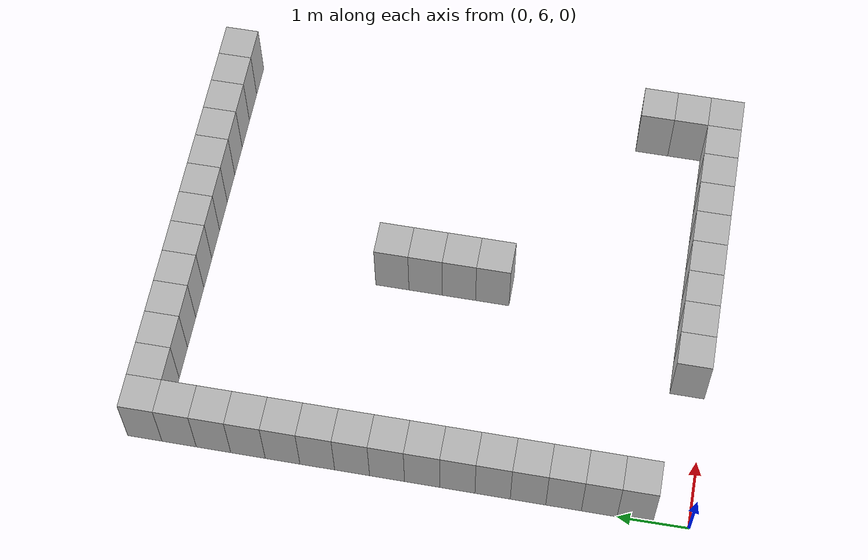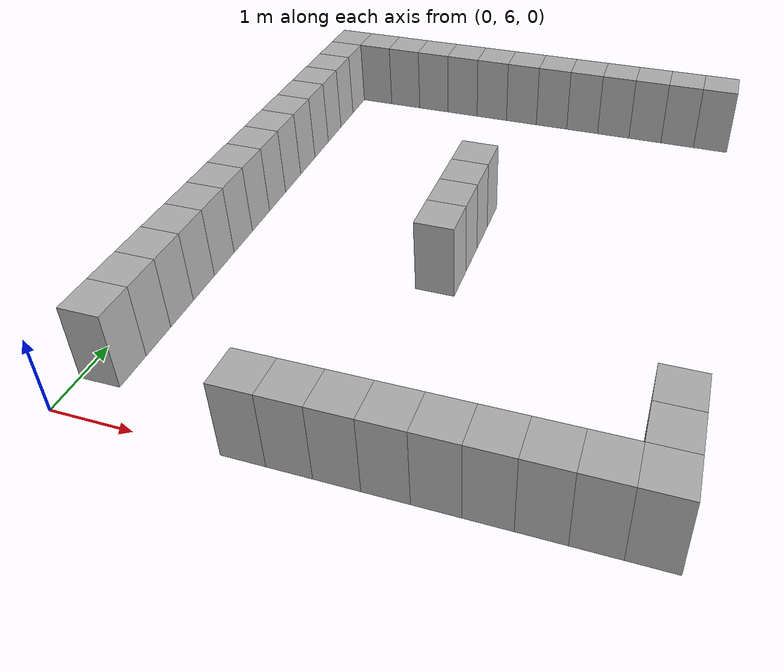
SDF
<sdf version="1.4">
 <world name="default">
  <model name="box_0_13">
   <pose>0.25 6.75 0.5 0 0 0</pose>
   <static>true</static>
   <link name="link">
    <collision name="collision"><geometry><box><size>0.5 0.5 1.0</size></box></geometry></collision>
    <visual name="visual"><geometry><box><size>0.5 0.5 1.0</size></box></geometry></visual>
   </link>
  </model>
  <model name="box_0_14">
   <pose>0.25 7.25 0.5 0 0 0</pose>
   <static>true</static>
   <link name="link">
    <collision name="collision"><geometry><box><size>0.5 0.5 1.0</size></box></geometry></collision>
    <visual name="visual"><geometry><box><size>0.5 0.5 1.0</size></box></geometry></visual>
   </link>
  </model>
  <model name="box_0_15">
   <pose>0.25 7.75 0.5 0 0 0</pose>
   <static>true</static>
   <link name="link">
    <collision name="collision"><geometry><box><size>0.5 0.5 1.0</size></box></geometry></collision>
    <visual name="visual"><geometry><box><size>0.5 0.5 1.0</size></box></geometry></visual>
   </link>
  </model>
  <model name="box_0_16">
   <pose>0.25 8.25 0.5 0 0 0</pose>
   <static>true</static>
   <link name="link">
    <collision name="collision"><geometry><box><size>0.5 0.5 1.0</size></box></geometry></collision>
    <visual name="visual"><geometry><box><size>0.5 0.5 1.0</size></box></geometry></visual>
   </link>
  </model>
  <model name="box_0_17">
   <pose>0.25 8.75 0.5 0 0 0</pose>
   <static>true</static>
   <link name="link">
    <collision name="collision"><geometry><box><size>0.5 0.5 1.0</size></box></geometry></collision>
    <visual name="visual"><geometry><box><size>0.5 0.5 1.0</size></box></geometry></visual>
   </link>
  </model>
  <model name="box_0_18">
   <pose>0.25 9.25 0.5 0 0 0</pose>
   <static>true</static>
   <link name="link">
    <collision name="collision"><geometry><box><size>0.5 0.5 1.0</size></box></geometry></collision>
    <visual name="visual"><geometry><box><size>0.5 0.5 1.0</size></box></geometry></visual>
   </link>
  </model>
  <model name="box_0_19">
   <pose>0.25 9.75 0.5 0 0 0</pose>
   <static>true</static>
   <link name="link">
    <collision name="collision"><geometry><box><size>0.5 0.5 1.0</size></box></geometry></collision>
    <visual name="visual"><geometry><box><size>0.5 0.5 1.0</size></box></geometry></visual>
   </link>
  </model>
  <model name="box_0_20">
   <pose>0.25 10.25 0.5 0 0 0</pose>
   <static>true</static>
   <link name="link">
    <collision name="collision"><geometry><box><size>0.5 0.5 1.0</size></box></geometry></collision>
    <visual name="visual"><geometry><box><size>0.5 0.5 1.0</size></box></geometry></visual>
   </link>
  </model>
  <model name="box_0_21">
   <pose>0.25 10.75 0.5 0 0 0</pose>
   <static>true</static>
   <link name="link">
    <collision name="collision"><geometry><box><size>0.5 0.5 1.0</size></box></geometry></collision>
    <visual name="visual"><geometry><box><size>0.5 0.5 1.0</size></box></geometry></visual>
   </link>
  </model>
  <model name="box_0_22">
   <pose>0.25 11.25 0.5 0 0 0</pose>
   <static>true</static>
   <link name="link">
    <collision name="collision"><geometry><box><size>0.5 0.5 1.0</size></box></geometry></collision>
    <visual name="visual"><geometry><box><size>0.5 0.5 1.0</size></box></geometry></visual>
   </link>
  </model>
  <model name="box_0_23">
   <pose>0.25 11.75 0.5 0 0 0</pose>
   <static>true</static>
   <link name="link">
    <collision name="collision"><geometry><box><size>0.5 0.5 1.0</size></box></geometry></collision>
    <visual name="visual"><geometry><box><size>0.5 0.5 1.0</size></box></geometry></visual>
   </link>
  </model>
  <model name="box_0_24">
   <pose>0.25 12.25 0.5 0 0 0</pose>
   <static>true</static>
   <link name="link">
    <collision name="collision"><geometry><box><size>0.5 0.5 1.0</size></box></geometry></collision>
    <visual name="visual"><geometry><box><size>0.5 0.5 1.0</size></box></geometry></visual>
   </link>
  </model>
  <model name="box_0_25">
   <pose>0.25 12.75 0.5 0 0 0</pose>
   <static>true</static>
   <link name="link">
    <collision name="collision"><geometry><box><size>0.5 0.5 1.0</size></box></geometry></collision>
    <visual name="visual"><geometry><box><size>0.5 0.5 1.0</size></box></geometry></visual>
   </link>
  </model>
  <model name="box_0_26">
   <pose>0.25 13.25 0.5 0 0 0</pose>
   <static>true</static>
   <link name="link">
    <collision name="collision"><geometry><box><size>0.5 0.5 1.0</size></box></geometry></collision>
    <visual name="visual"><geometry><box><size>0.5 0.5 1.0</size></box></geometry></visual>
   </link>
  </model>
  <model name="box_0_27">
   <pose>0.25 13.75 0.5 0 0 0</pose>
   <static>true</static>
   <link name="link">
    <collision name="collision"><geometry><box><size>0.5 0.5 1.0</size></box></geometry></collision>
    <visual name="visual"><geometry><box><size>0.5 0.5 1.0</size></box></geometry></visual>
   </link>
  </model>
  <model name="box_1_27">
   <pose>0.75 13.75 0.5 0 0 0</pose>
   <static>true</static>
   <link name="link">
    <collision name="collision"><geometry><box><size>0.5 0.5 1.0</size></box></geometry></collision>
    <visual name="visual"><geometry><box><size>0.5 0.5 1.0</size></box></geometry></visual>
   </link>
  </model>
  <model name="box_2_27">
   <pose>1.25 13.75 0.5 0 0 0</pose>
   <static>true</static>
   <link name="link">
    <collision name="collision"><geometry><box><size>0.5 0.5 1.0</size></box></geometry></collision>
    <visual name="visual"><geometry><box><size>0.5 0.5 1.0</size></box></geometry></visual>
   </link>
  </model>
  <model name="box_3_27">
   <pose>1.75 13.75 0.5 0 0 0</pose>
   <static>true</static>
   <link name="link">
    <collision name="collision"><geometry><box><size>0.5 0.5 1.0</size></box></geometry></collision>
    <visual name="visual"><geometry><box><size>0.5 0.5 1.0</size></box></geometry></visual>
   </link>
  </model>
  <model name="box_4_12">
   <pose>2.25 6.25 0.5 0 0 0</pose>
   <static>true</static>
   <link name="link">
    <collision name="collision"><geometry><box><size>0.5 0.5 1.0</size></box></geometry></collision>
    <visual name="visual"><geometry><box><size>0.5 0.5 1.0</size></box></geometry></visual>
   </link>
  </model>
  <model name="box_4_27">
   <pose>2.25 13.75 0.5 0 0 0</pose>
   <static>true</static>
   <link name="link">
    <collision name="collision"><geometry><box><size>0.5 0.5 1.0</size></box></geometry></collision>
    <visual name="visual"><geometry><box><size>0.5 0.5 1.0</size></box></geometry></visual>
   </link>
  </model>
  <model name="box_5_12">
   <pose>2.75 6.25 0.5 0 0 0</pose>
   <static>true</static>
   <link name="link">
    <collision name="collision"><geometry><box><size>0.5 0.5 1.0</size></box></geometry></collision>
    <visual name="visual"><geometry><box><size>0.5 0.5 1.0</size></box></geometry></visual>
   </link>
  </model>
  <model name="box_5_27">
   <pose>2.75 13.75 0.5 0 0 0</pose>
   <static>true</static>
   <link name="link">
    <collision name="collision"><geometry><box><size>0.5 0.5 1.0</size></box></geometry></collision>
    <visual name="visual"><geometry><box><size>0.5 0.5 1.0</size></box></geometry></visual>
   </link>
  </model>
  <model name="box_6_12">
   <pose>3.25 6.25 0.5 0 0 0</pose>
   <static>true</static>
   <link name="link">
    <collision name="collision"><geometry><box><size>0.5 0.5 1.0</size></box></geometry></collision>
    <visual name="visual"><geometry><box><size>0.5 0.5 1.0</size></box></geometry></visual>
   </link>
  </model>
  <model name="box_6_18">
   <pose>3.25 9.25 0.5 0 0 0</pose>
   <static>true</static>
   <link name="link">
    <collision name="collision"><geometry><box><size>0.5 0.5 1.0</size></box></geometry></collision>
    <visual name="visual"><geometry><box><size>0.5 0.5 1.0</size></box></geometry></visual>
   </link>
  </model>
  <model name="box_6_19">
   <pose>3.25 9.75 0.5 0 0 0</pose>
   <static>true</static>
   <link name="link">
    <collision name="collision"><geometry><box><size>0.5 0.5 1.0</size></box></geometry></collision>
    <visual name="visual"><geometry><box><size>0.5 0.5 1.0</size></box></geometry></visual>
   </link>
  </model>
  <model name="box_6_20">
   <pose>3.25 10.25 0.5 0 0 0</pose>
   <static>true</static>
   <link name="link">
    <collision name="collision"><geometry><box><size>0.5 0.5 1.0</size></box></geometry></collision>
    <visual name="visual"><geometry><box><size>0.5 0.5 1.0</size></box></geometry></visual>
   </link>
  </model>
  <model name="box_6_21">
   <pose>3.25 10.75 0.5 0 0 0</pose>
   <static>true</static>
   <link name="link">
    <collision name="collision"><geometry><box><size>0.5 0.5 1.0</size></box></geometry></collision>
    <visual name="visual"><geometry><box><size>0.5 0.5 1.0</size></box></geometry></visual>
   </link>
  </model>
  <model name="box_6_27">
   <pose>3.25 13.75 0.5 0 0 0</pose>
   <static>true</static>
   <link name="link">
    <collision name="collision"><geometry><box><size>0.5 0.5 1.0</size></box></geometry></collision>
    <visual name="visual"><geometry><box><size>0.5 0.5 1.0</size></box></geometry></visual>
   </link>
  </model>
  <model name="box_7_12">
   <pose>3.75 6.25 0.5 0 0 0</pose>
   <static>true</static>
   <link name="link">
    <collision name="collision"><geometry><box><size>0.5 0.5 1.0</size></box></geometry></collision>
    <visual name="visual"><geometry><box><size>0.5 0.5 1.0</size></box></geometry></visual>
   </link>
  </model>
  <model name="box_7_27">
   <pose>3.75 13.75 0.5 0 0 0</pose>
   <static>true</static>
   <link name="link">
    <collision name="collision"><geometry><box><size>0.5 0.5 1.0</size></box></geometry></collision>
    <visual name="visual"><geometry><box><size>0.5 0.5 1.0</size></box></geometry></visual>
   </link>
  </model>
  <model name="box_8_12">
   <pose>4.25 6.25 0.5 0 0 0</pose>
   <static>true</static>
   <link name="link">
    <collision name="collision"><geometry><box><size>0.5 0.5 1.0</size></box></geometry></collision>
    <visual name="visual"><geometry><box><size>0.5 0.5 1.0</size></box></geometry></visual>
   </link>
  </model>
  <model name="box_8_27">
   <pose>4.25 13.75 0.5 0 0 0</pose>
   <static>true</static>
   <link name="link">
    <collision name="collision"><geometry><box><size>0.5 0.5 1.0</size></box></geometry></collision>
    <visual name="visual"><geometry><box><size>0.5 0.5 1.0</size></box></geometry></visual>
   </link>
  </model>
  <model name="box_9_12">
   <pose>4.75 6.25 0.5 0 0 0</pose>
   <static>true</static>
   <link name="link">
    <collision name="collision"><geometry><box><size>0.5 0.5 1.0</size></box></geometry></collision>
    <visual name="visual"><geometry><box><size>0.5 0.5 1.0</size></box></geometry></visual>
   </link>
  </model>
  <model name="box_9_27">
   <pose>4.75 13.75 0.5 0 0 0</pose>
   <static>true</static>
   <link name="link">
    <collision name="collision"><geometry><box><size>0.5 0.5 1.0</size></box></geometry></collision>
    <visual name="visual"><geometry><box><size>0.5 0.5 1.0</size></box></geometry></visual>
   </link>
  </model>
  <model name="box_10_12">
   <pose>5.25 6.25 0.5 0 0 0</pose>
   <static>true</static>
   <link name="link">
    <collision name="collision"><geometry><box><size>0.5 0.5 1.0</size></box></geometry></collision>
    <visual name="visual"><geometry><box><size>0.5 0.5 1.0</size></box></geometry></visual>
   </link>
  </model>
  <model name="box_10_27">
   <pose>5.25 13.75 0.5 0 0 0</pose>
   <static>true</static>
   <link name="link">
    <collision name="collision"><geometry><box><size>0.5 0.5 1.0</size></box></geometry></collision>
    <visual name="visual"><geometry><box><size>0.5 0.5 1.0</size></box></geometry></visual>
   </link>
  </model>
  <model name="box_11_12">
   <pose>5.75 6.25 0.5 0 0 0</pose>
   <static>true</static>
   <link name="link">
    <collision name="collision"><geometry><box><size>0.5 0.5 1.0</size></box></geometry></collision>
    <visual name="visual"><geometry><box><size>0.5 0.5 1.0</size></box></geometry></visual>
   </link>
  </model>
  <model name="box_11_27">
   <pose>5.75 13.75 0.5 0 0 0</pose>
   <static>true</static>
   <link name="link">
    <collision name="collision"><geometry><box><size>0.5 0.5 1.0</size></box></geometry></collision>
    <visual name="visual"><geometry><box><size>0.5 0.5 1.0</size></box></geometry></visual>
   </link>
  </model>
  <model name="box_12_12">
   <pose>6.25 6.25 0.5 0 0 0</pose>
   <static>true</static>
   <link name="link">
    <collision name="collision"><geometry><box><size>0.5 0.5 1.0</size></box></geometry></collision>
    <visual name="visual"><geometry><box><size>0.5 0.5 1.0</size></box></geometry></visual>
   </link>
  </model>
  <model name="box_12_13">
   <pose>6.25 6.75 0.5 0 0 0</pose>
   <static>true</static>
   <link name="link">
    <collision name="collision"><geometry><box><size>0.5 0.5 1.0</size></box></geometry></collision>
    <visual name="visual"><geometry><box><size>0.5 0.5 1.0</size></box></geometry></visual>
   </link>
  </model>
  <model name="box_12_14">
   <pose>6.25 7.25 0.5 0 0 0</pose>
   <static>true</static>
   <link name="link">
    <collision name="collision"><geometry><box><size>0.5 0.5 1.0</size></box></geometry></collision>
    <visual name="visual"><geometry><box><size>0.5 0.5 1.0</size></box></geometry></visual>
   </link>
  </model>
  <model name="box_12_27">
   <pose>6.25 13.75 0.5 0 0 0</pose>
   <static>true</static>
   <link name="link">
    <collision name="collision"><geometry><box><size>0.5 0.5 1.0</size></box></geometry></collision>
    <visual name="visual"><geometry><box><size>0.5 0.5 1.0</size></box></geometry></visual>
   </link>
  </model>
 </world>
</sdf>
